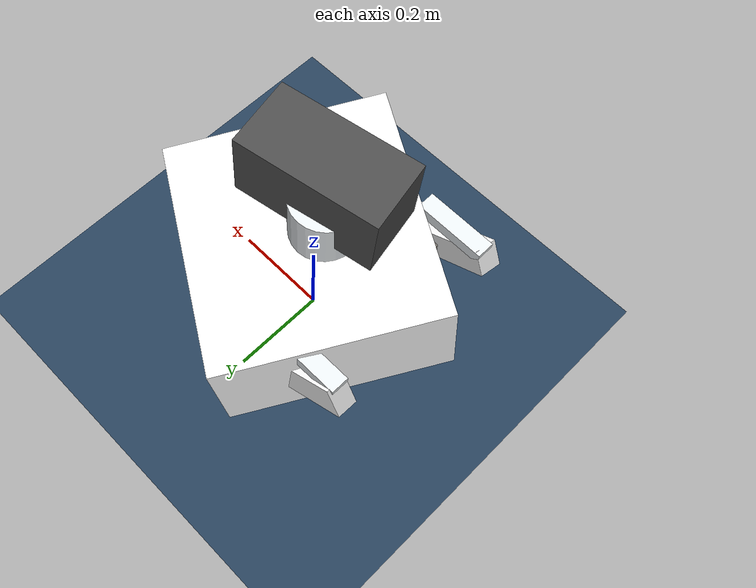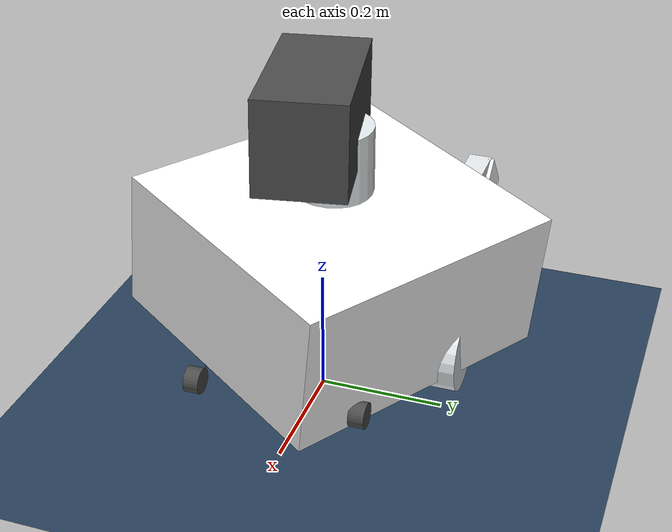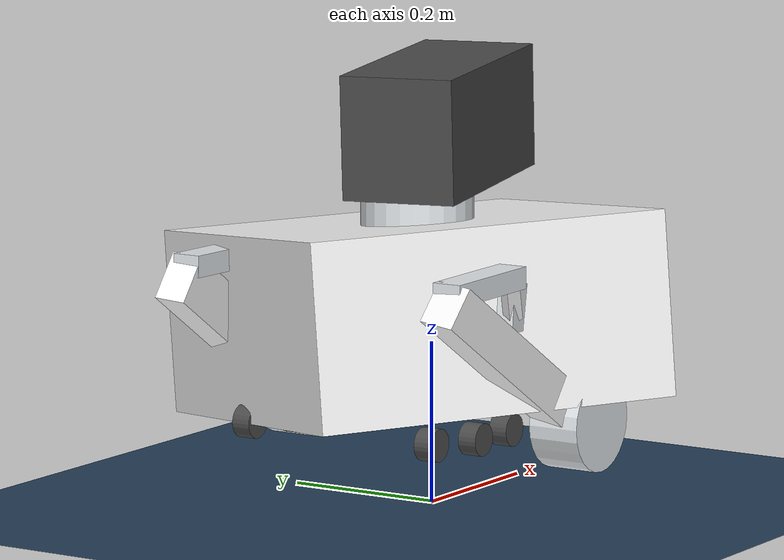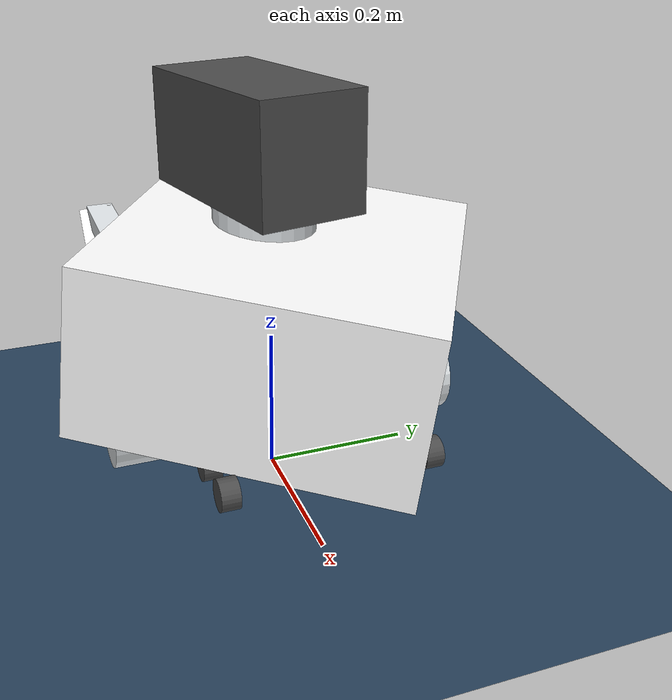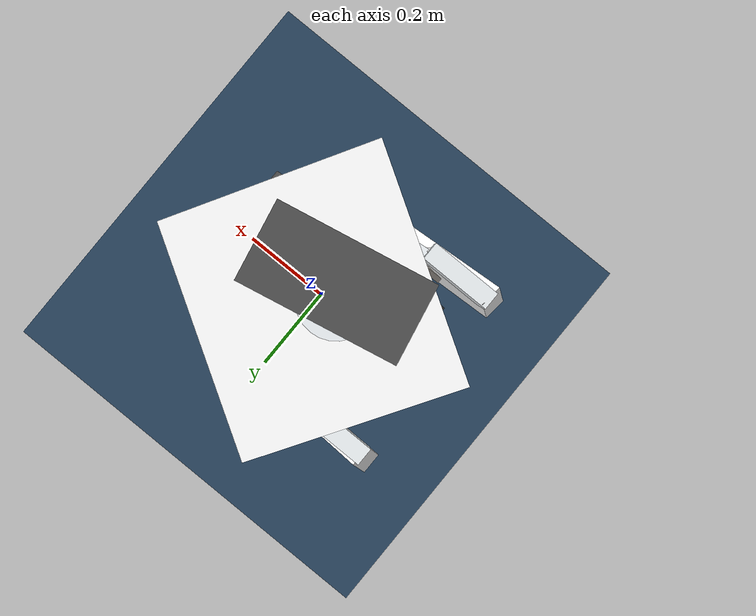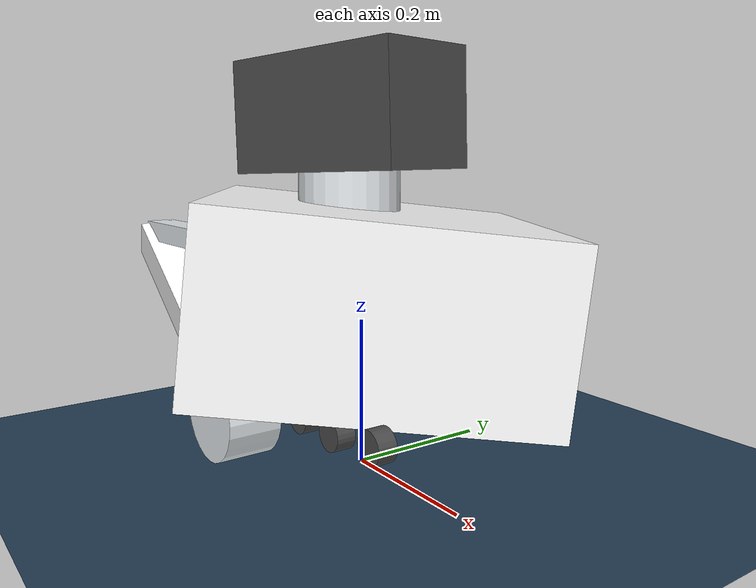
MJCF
<mujoco model="wheelbipe_924 scene">
  <include file="wheelbipe_924.xml"/>

  <statistic center="0 0 0.25" extent="0.8"/>

  <visual>
    <headlight diffuse="0.6 0.6 0.6" ambient="0.3 0.3 0.3" specular="0 0 0"/>
    <rgba haze="0.15 0.25 0.35 1"/>
    <global azimuth="-130" elevation="-20"/>
  </visual>

  <asset>
    <texture type="skybox" builtin="gradient" rgb1="0.3 0.5 0.7" rgb2="0 0 0" width="512" height="3072"/>
    <texture type="2d" name="groundplane" builtin="checker" mark="edge" rgb1="0.2 0.3 0.4" rgb2="0.1 0.2 0.3" markrgb="0.8 0.8 0.8" width="300" height="300"/>
    <material name="groundplane" texture="groundplane" texuniform="true" texrepeat="5 5" reflectance="0.2"/>
  </asset>

  <worldbody>
    <light pos="0 0 1.5" dir="0 0 -1" directional="true"/>
    <geom name="floor" size="0 0 0.05" type="plane" material="groundplane"/>
  </worldbody>

  <include file="locomotion_task.xml"/>
</mujoco>

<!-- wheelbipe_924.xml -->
<mujoco model="9.24">
  <compiler angle="radian" meshdir="assets" autolimits="true"/>

  <worldbody>
    <body name="base_link" pos="0 0 0.25"><freejoint name="base_free"/><inertial pos="0.011885 0.002730 -0.023045" mass="10.8309" fullinertia="0.140981 0.155510 0.236018 -0.002224 -0.002586 0.002225"/><site name="imu_site" pos="0 0 0" size="0.01"/><geom size="0.113576 0.218258 0.235364" pos="-0.004408 0.020032 -0.013968" quat="-0.151466 0.675286 -0.229011 -0.684544" type="box" rgba="1 1 1 1"/>
    <body name="left_rear1_link" pos="0.0170661 0.173507 0.0134711" quat="0.707107 0 0 -0.707107">
      <inertial pos="-0.000219747 -0.101308 0.00240689" quat="0.712398 0.701775 5.151e-05 -2.88261e-05" mass="0.263038" diaginertia="0.00146612 0.00139133 7.9271e-05"/>
      <joint name="left_rear1_joint" pos="0 0 0" axis="1 0 0"/>
      <geom size="0.0135845 0.0266745 0.0769625" pos="0.000442 -0.054663 0.002851" quat="0.0204904 -0.0315918 -0.687727 0.724992" type="box" rgba="0.764706 0.337255 1 1"/>
      <body name="left_rear2_link" pos="-0.0155 -0.215 0">
        <inertial pos="-0.00118174 0.0650307 -0.0476695" quat="0.887099 0.461574 -0.00111274 0.00167691" mass="0.371025" diaginertia="0.00256063 0.002482 9.54129e-05"/>
        <joint name="left_rear2_joint" pos="0 0 0" axis="1 0 0" range="-0.02 1.2"/>
        <geom size="0.021083 0.0308175 0.183054" pos="-0.007855 0.087214 -0.062916" quat="0.879252 0.475401 0.0244551 -0.0176734" type="box" rgba="1 1 1 1"/>
        <body name="left_wheel_link" pos="0 0.215 -0.142615">
          <inertial pos="-0.0251353 0.000141229 -7.40306e-05" quat="0.980469 -0.196673 -0.000174649 -0.000889777" mass="0.547374" diaginertia="0.00082635 0.000466549 0.000464442"/>
          <joint name="left_wheel_joint" pos="0 0 0" axis="1 0 0" range="-3.14 3.14"/>
          <geom size="0.059992 0.032925" pos="-0.015622 5e-06 6e-06" quat="0.707107 0 0.707107 0" type="cylinder" rgba="0.898039 0.917647 0.929412 1"/>
        </body>
      </body>
      <body name="left_spring1_link" pos="-0.00199722 -0.024 -0.0415692" quat="0.707107 0 0 0.707107">
        <inertial pos="-0.0296298 -0.0025 0.00295047" quat="0.474582 0.524187 0.524187 0.474582" mass="0.0312428" diaginertia="7.36128e-06 7.22225e-06 3.89104e-07"/>
        <joint name="left_spring1_joint" pos="0 0 0" axis="0 1 0" range="-0.5 0.1"/>
        <geom size="0.005489 0.0075 0.0457295" pos="-0.038082 -0.0025 0.003792" quat="0.474582 0.524187 0.524187 0.474582" type="box" rgba="0.647059 0.619608 0.588235 1"/>
        <body name="left_spring2_link" pos="-0.151 0 0.015036">
          <inertial pos="0.0593755 -0.0025 -0.00591247" quat="0.474582 0.524187 0.524187 0.474582" mass="0.131334" diaginertia="8.55355e-05 8.53964e-05 3.84543e-06"/>
          <joint name="left_spring2_joint" pos="0 0 0" axis="-0.995079 0 0.0990879" type="slide" range="-0.015 0.065"/>
          <geom size="0.007386 0.0075 0.0607295" pos="0.053008 -0.0025 -0.005278" quat="0.288662 -0.669245 0.318833 -0.605913" type="box" rgba="0.647059 0.619608 0.588235 1"/>
        </body>
      </body>
    </body>
    <body name="right_rear1_link" pos="0.017066 -0.16779 0.013471" quat="0.707105 0 0 -0.707108">
      <inertial pos="0.000225305 -0.101319 0.00241327" quat="0.712344 0.701831 -5.1696e-05 2.89771e-05" mass="0.263038" diaginertia="0.00146548 0.00139073 7.92288e-05"/>
      <joint name="right_rear1_joint" pos="0 0 0" axis="-1 0 0" range="-3.14 1"/>
      <geom size="0.0135535 0.028556 0.0771655" pos="-0.000464 -0.054865 0.004161" quat="0.667176 -0.743995 -0.0271531 0.0246963" type="box" rgba="0.898039 0.917647 0.929412 1"/>
      <body name="right_rear2_link" pos="0.0155 -0.215 0">
        <inertial pos="0.00119088 0.0650495 -0.0477452" quat="0.88714 0.461498 0.000849241 -0.00118793" mass="0.371427" diaginertia="0.00256139 0.00248251 9.56916e-05"/>
        <joint name="right_rear2_joint" pos="0 0 0" axis="-1 0 0" range="0 1.2"/>
        <geom size="0.0230925 0.0265545 0.182592" pos="0.006816 0.08876 -0.061304" quat="-0.0220688 0.072385 0.876321 0.475746" type="box" rgba="1 1 1 1"/>
        <body name="right_wheel_link" pos="0 0.215 -0.142615">
          <inertial pos="0.0251408 0.000155535 -3.51454e-05" quat="0.988079 -0.153942 0.0001433 0.000895361" mass="0.547374" diaginertia="0.00082635 0.000466549 0.000464442"/>
          <joint name="right_wheel_joint" pos="0 0 0" axis="1 0 0" range="-3.14 3.14"/>
          <geom size="0.05999 0.032925" pos="0.015628 3.1e-05 -7e-06" quat="0.707107 0 0.707107 0" type="cylinder" rgba="0.898039 0.917647 0.929412 1"/>
        </body>
      </body>
      <body name="right_spring1_link" pos="0.00200278 -0.024 -0.0415692" quat="0.707107 0 0 0.707107">
        <inertial pos="-0.0296298 0.0025 0.00295047" quat="0.474582 0.524187 0.524187 0.474582" mass="0.0312428" diaginertia="7.36128e-06 7.22225e-06 3.89104e-07"/>
        <joint name="right_spring1_joint" pos="0 0 0" axis="0 1 0" range="-0.5 0.1"/>
        <geom size="0.005489 0.0075 0.0457295" pos="-0.038082 0.0025 0.003792" quat="0.474582 0.524187 0.524187 0.474582" type="box" rgba="0.647059 0.619608 0.588235 1"/>
        <body name="right_spring2_link" pos="-0.151 0 0.0150362">
          <inertial pos="0.0593755 0.0025 -0.00591247" quat="0.474582 0.524187 0.524187 0.474582" mass="0.131334" diaginertia="8.55355e-05 8.53964e-05 3.84543e-06"/>
          <joint name="right_spring2_joint" pos="0 0 0" axis="-0.995079 0 0.0990876" type="slide" range="-0.015 0.065"/>
          <geom size="0.007386 0.0075 0.0607295" pos="0.053008 0.0025 -0.005278" quat="0.235744 -0.694079 0.260381 -0.628396" type="box" rgba="0.647059 0.619608 0.588235 1"/>
        </body>
      </body>
    </body>
    <body name="gimbal_yaw_link" pos="0.017066 0.0028539 0.072971">
      <inertial pos="-0.0528363 -0.00552415 0.0510267" quat="0.629686 0.434765 0.478353 0.430875" mass="0.479939" diaginertia="0.000845477 0.000643014 0.000465368"/>
      <joint name="gimbal_yaw_joint" pos="0 0 0" axis="0 0 -1"/>
      <geom size="0.069076 0.062022" pos="-0.047712 -0.001156 0.068402" quat="-1.73205e-07 1 0 0" type="cylinder" rgba="0.898039 0.917647 0.929412 1"/>
      <body name="gimbal_pitch_link" pos="0 0 0.11235">
        <inertial pos="0.0137603 -0.0151111 0.0466181" quat="0.599954 0.247533 0.667965 0.36415" mass="2.15462" diaginertia="0.0111064 0.0101526 0.00532011"/>
        <joint name="gimbal_pitch_joint" pos="0 0 0" axis="0.0184443 -0.99983 0"/>
        <geom size="0.0708425 0.0755015 0.141623" pos="-0.027878 -0.019667 0.040319" quat="0.537557 0.55729 -0.458954 -0.435684" type="box" rgba="0.298039 0.298039 0.298039 1"/>
      </body>
    </body>
    <body name="left_front1_link" pos="0.017063 0.18651 0.013471" quat="0.707105 0 0 -0.707108">
      <inertial pos="-0.000141444 0.0552416 0" quat="0.707104 0.707104 -0.00203113 -0.00203113" mass="0.0744739" diaginertia="8.16246e-05 7.33204e-05 9.3063e-06"/>
      <joint name="left_front1_joint" pos="0 0 0" axis="1 0 0" range="-3.14 3.14"/>
      <geom size="0.00575 0.0199125 0.061924" pos="-0.000747 0.043765 0.002703" quat="-1.18514e-07 1.26311e-07 -0.729256 0.684241" type="box" rgba="0.898039 0.917647 0.929412 1"/>
      <body name="left_front2_link" pos="0.0125 0.0950026 0">
        <inertial pos="-0.00209284 -0.0469575 -0.0330273" quat="0.473617 0.880715 -0.00454216 0.00266923" mass="0.0860831" diaginertia="0.000118222 0.00011756 5.86976e-06"/>
        <joint name="left_front2_joint" pos="0 0 0" axis="1 0 0" range="-1 0.1"/>
        <geom size="0.0104295 0.015927 0.068233" pos="-0.009845 -0.047534 -0.02804" quat="0.626723 -0.329627 -0.339598 -0.619062" type="box" rgba="0.647059 0.619608 0.588235 1"/>
        <body name="left_front3_link" pos="0 -0.095 -0.0630159">
          <inertial pos="-0.0124972 -0.0748582 0.0553152" quat="0.902548 0.430588 0 0" mass="0.115371" diaginertia="0.000173731 0.000168009 6.91158e-06"/>
          <joint name="left_front3_joint" pos="0 0 0" axis="1 0 0" range="-0.1 1"/>
          <geom size="0.0048635 0.010958 0.0914235" pos="-0.014326 -0.06876 0.041537" quat="-0.0256193 0.0724951 -0.867038 -0.492273" type="box" rgba="1 1 1 1"/>
          <body name="left_front4_link" pos="-0.013 -0.13802 0.11174">
            <inertial pos="0.0101187 -0.061345 0" quat="0.707102 0.707112 0 0" mass="0.0896953" diaginertia="0.000130577 0.000130562 6.43097e-06"/>
            <joint name="left_front4_joint" pos="0 0 0" axis="1 0 0" range="-2 0.1"/>
            <geom size="0.013358 0.01835 0.0733545" pos="-0.000347 -0.059993 0.000661" quat="-0.497176 0.502808 -0.502808 -0.497176" type="box" rgba="0.898039 0.917647 0.929412 1"/>
          </body>
        </body>
      </body>
    </body>
    <body name="right_front1_link" pos="0.017066 -0.18079 0.013471" quat="0.707105 0 0 -0.707108">
      <inertial pos="0.000147003 0.055239 0" quat="0.707104 0.707104 0.00203113 0.00203113" mass="0.0744739" diaginertia="8.16246e-05 7.33204e-05 9.3063e-06"/>
      <joint name="right_front1_joint" pos="0 0 0" axis="-1 0 0" range="-3.14 3.14"/>
      <geom size="0.00575 0.0199065 0.061906" pos="-0.000747 0.043773 -0.002908" quat="0.730897 0.682488 0 0" type="box" rgba="0.898039 0.917647 0.929412 1"/>
      <body name="right_front2_link" pos="-0.0125 0.095 0">
        <inertial pos="0.0020984 -0.0469575 -0.0330273" quat="0.473629 0.880709 0.00452458 -0.00265986" mass="0.0860831" diaginertia="0.000118222 0.000117558 5.8724e-06"/>
        <joint name="right_front2_joint" pos="0 0 0" axis="-1 0 0" range="-1 0.1"/>
        <geom size="0.0118935 0.015926 0.06602" pos="0.009801 -0.047934 -0.033717" quat="0.339643 0.619753 -0.626304 0.329077" type="box" rgba="0.647059 0.619608 0.588235 1"/>
        <body name="right_front3_link" pos="0 -0.095 -0.0630159">
          <inertial pos="0.0125028 -0.0748582 0.0553152" quat="0.902548 0.430588 0 0" mass="0.115371" diaginertia="0.000173731 0.000168009 6.91158e-06"/>
          <joint name="right_front3_joint" pos="0 0 0" axis="-1 0 0" range="-0.1 1"/>
          <geom size="0.0053955 0.010873 0.0340945" pos="0.014127 -0.130149 0.090355" quat="0.979644 0.159219 0.0651681 -0.10344" type="box" rgba="1 1 1 1"/>
          <body name="right_front4_link" pos="0.013 -0.13802 0.11174">
            <inertial pos="-0.0101131 -0.061345 0" quat="0.7071 0.707113 0 0" mass="0.0896953" diaginertia="0.000130577 0.00013056 6.43329e-06"/>
            <joint name="right_front4_joint" pos="0 0 0" axis="1 0 0" range="-2 0.1"/>
            <geom size="0.013358 0.01835 0.0733545" pos="0.000353 -0.060007 0.000661" quat="-0.497176 -0.502808 -0.502808 0.497176" type="box" rgba="0.898039 0.917647 0.929412 1"/>
          </body>
        </body>
      </body>
    </body>
    <body name="left_front_guide_link" pos="0.21607 0.13385 -0.12953">
      <inertial pos="0 0.00508744 0" quat="0.707107 0 0 0.707107" mass="0.0140787" diaginertia="2.76652e-06 1.58051e-06 1.58051e-06"/>
      <joint name="left_front_guide_joint" pos="0 0 0" axis="0 1 0"/>
      <geom size="0.019982 0.012" pos="3.1e-05 -0.001 5e-06" quat="0.707107 -0.707107 0 0" type="cylinder" rgba="0.298039 0.298039 0.298039 1"/>
    </body>
    <body name="left_front1_guide_link" pos="-0.20093 0.13385 -0.12953">
      <inertial pos="0 0.00508744 0" quat="0.707107 0 0 0.707107" mass="0.0140787" diaginertia="2.76652e-06 1.58051e-06 1.58051e-06"/>
      <joint name="left_front1_guide_joint" pos="0 0 0" axis="0 1 0"/>
      <geom size="0.02 0.012" pos="0 -0.001 0" quat="0.707107 -0.707107 0 0" type="cylinder" rgba="0.298039 0.298039 0.298039 1"/>
    </body>
    <body name="left_bottom1_guide_link" pos="0.13707 0.13385 -0.13953">
      <inertial pos="0 0.00508744 0" quat="0.707107 0 0 0.707107" mass="0.0140787" diaginertia="2.76652e-06 1.58051e-06 1.58051e-06"/>
      <joint name="left_bottom1_guide_joint" pos="0 0 0" axis="0 1 0"/>
      <geom size="0.019982 0.012" pos="-3.6e-05 -0.001 0" quat="0.707107 -0.707107 0 0" type="cylinder" rgba="0.298039 0.298039 0.298039 1"/>
    </body>
    <body name="left_bottom2_guide_link" pos="0.067066 0.13385 -0.13953">
      <inertial pos="0 0.00508744 0" quat="0.707107 0 0 0.707107" mass="0.0140787" diaginertia="2.76652e-06 1.58051e-06 1.58051e-06"/>
      <joint name="left_bottom2_guide_joint" pos="0 0 0" axis="0 1 0"/>
      <geom size="0.019982 0.012" pos="-3.2e-05 -0.001 4e-06" quat="0.707107 -0.707107 0 0" type="cylinder" rgba="0.298039 0.298039 0.298039 1"/>
    </body>
    <body name="left_bottom3_guide_link" pos="-0.032934 0.13385 -0.13953">
      <inertial pos="0 0.00508744 0" quat="0.707107 0 0 0.707107" mass="0.0140787" diaginertia="2.76652e-06 1.58051e-06 1.58051e-06"/>
      <joint name="left_bottom3_guide_joint" pos="0 0 0" axis="0 1 0"/>
      <geom size="0.019982 0.012" pos="3.6e-05 -0.001 0" quat="0.707107 -0.707107 0 0" type="cylinder" rgba="0.298039 0.298039 0.298039 1"/>
    </body>
    <body name="left_bottom4_guide_link" pos="-0.10293 0.13385 -0.13953">
      <inertial pos="0 0.00508744 0" quat="0.707107 0 0 0.707107" mass="0.0140787" diaginertia="2.76652e-06 1.58051e-06 1.58051e-06"/>
      <joint name="left_bottom4_guide_joint" pos="0 0 0" axis="0 1 0"/>
      <geom size="0.019982 0.012" pos="-3.6e-05 -0.001 0" quat="0.707107 -0.707107 0 0" type="cylinder" rgba="0.298039 0.298039 0.298039 1"/>
    </body>
    <body name="right_front_guide_link" pos="0.21607 -0.12815 -0.12953">
      <inertial pos="0 -0.0050874 0" quat="0.707107 0 0 0.707107" mass="0.014079" diaginertia="2.7665e-06 1.5805e-06 1.5805e-06"/>
      <joint name="right_front_guide_joint" pos="0 0 0" axis="0 -1 0"/>
      <geom size="0.019982 0.012" pos="3.1e-05 0.001 -5e-06" quat="0.707107 0.707107 0 0" type="cylinder" rgba="0.29804 0.29804 0.29804 1"/>
    </body>
    <body name="right_front1_guide_link" pos="-0.20093 -0.12815 -0.12953">
      <inertial pos="0 -0.0050874 0" quat="0.707107 0 0 0.707107" mass="0.014079" diaginertia="2.7665e-06 1.5805e-06 1.5805e-06"/>
      <joint name="right_front1_guide_joint" pos="0 0 0" axis="0 1 0"/>
      <geom size="0.02 0.012" pos="0 0.001 0" quat="0.707107 -0.707107 0 0" type="cylinder" rgba="0.29804 0.29804 0.29804 1"/>
    </body>
    <body name="right_bottom1_guide_link" pos="0.13707 -0.12815 -0.13953">
      <inertial pos="0 -0.0050874 0" quat="0.707107 0 0 0.707107" mass="0.014079" diaginertia="2.7665e-06 1.5805e-06 1.5805e-06"/>
      <joint name="right_bottom1_guide_joint" pos="0 0 0" axis="0 -1 0"/>
      <geom size="0.019982 0.012" pos="3.6e-05 0.001 0" quat="0.707107 0.707107 0 0" type="cylinder" rgba="0.29804 0.29804 0.29804 1"/>
    </body>
    <body name="right_bottom2_guide_link" pos="0.067066 -0.12815 -0.13953">
      <inertial pos="0 -0.0050874 0" quat="0.707107 0 0 0.707107" mass="0.014079" diaginertia="2.7665e-06 1.5805e-06 1.5805e-06"/>
      <joint name="right_bottom2_guide_joint" pos="0 0 0" axis="0 -1 0"/>
      <geom size="0.019982 0.012" pos="3.6e-05 0.001 0" quat="0.707107 0.707107 0 0" type="cylinder" rgba="0.29804 0.29804 0.29804 1"/>
    </body>
    <body name="right_bottom3_guide_link" pos="-0.032934 -0.12815 -0.13953">
      <inertial pos="0 -0.0050874 0" quat="0.707107 0 0 0.707107" mass="0.014079" diaginertia="2.7665e-06 1.5805e-06 1.5805e-06"/>
      <joint name="right_bottom3_guide_joint" pos="0 0 0" axis="0 -1 0"/>
      <geom size="0.019982 0.012" pos="3.6e-05 0.001 0" quat="0.707107 0.707107 0 0" type="cylinder" rgba="0.29804 0.29804 0.29804 1"/>
    </body>
    <body name="right_bottom4_guide_link" pos="-0.10293 -0.12815 -0.13953">
      <inertial pos="0 -0.0050874 0" quat="0.707107 0 0 0.707107" mass="0.014079" diaginertia="2.7665e-06 1.5805e-06 1.5805e-06"/>
      <joint name="right_bottom4_guide_joint" pos="0 0 0" axis="0 -1 0"/>
      <geom size="0.02 0.012" pos="0 0.001 0" quat="0.707107 0.707107 0 0" type="cylinder" rgba="0.29804 0.29804 0.29804 1"/>
    </body>
  </body></worldbody>
<actuator>
<!-- 主动腿关节：rear1 + front1（对应Isaac Sim的legs_act）
     stiffness=60, damping=2.0, effort_limit=40, velocity_limit=17 -->
<position name="left_rear1_joint_motor" joint="left_rear1_joint"
          kp="60" kv="2.0" ctrlrange="-3.14 3.14" forcerange="-40 40"/>
<position name="right_rear1_joint_motor" joint="right_rear1_joint"
          kp="60" kv="2.0" ctrlrange="-3.14 3.14" forcerange="-40 40"/>
<position name="left_front1_joint_motor" joint="left_front1_joint"
          kp="60" kv="2.0" ctrlrange="-3.14 3.14" forcerange="-40 40"/>
<position name="right_front1_joint_motor" joint="right_front1_joint"
          kp="60" kv="2.0" ctrlrange="-3.14 3.14" forcerange="-40 40"/>

<!-- 轮子：速度控制
     stiffness=0.0, damping=0.2, effort_limit=5.0, velocity_limit=60 -->
<velocity name="left_wheel_joint_motor" joint="left_wheel_joint"
          kv="0.2" ctrlrange="-60 60" forcerange="-5 5"/>
<velocity name="right_wheel_joint_motor" joint="right_wheel_joint"
          kv="0.2" ctrlrange="-60 60" forcerange="-5 5"/>
</actuator><option timestep="0.002" gravity="0 0 -9.81"/></mujoco>

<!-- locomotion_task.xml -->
<mujoco model="wheelbipe_924 locomotion task">
  <sensor>
    <!-- 车轮接触传感器 -->
    <framepos name="left_wheel_pos" objtype="body" objname="left_wheel_link"/>
    <framepos name="right_wheel_pos" objtype="body" objname="right_wheel_link"/>

    <!-- 基座IMU -->
    <gyro name="base_gyro" site="imu_site"/>
    <accelerometer name="base_accel" site="imu_site"/>
    <framequat name="base_quat" objtype="site" objname="imu_site"/>

    <!-- 关节位置和速度 -->
    <jointpos name="left_rear1_pos" joint="left_rear1_joint"/>
    <jointpos name="left_rear2_pos" joint="left_rear2_joint"/>
    <jointpos name="left_wheel_pos_joint" joint="left_wheel_joint"/>
    <jointpos name="right_rear1_pos" joint="right_rear1_joint"/>
    <jointpos name="right_rear2_pos" joint="right_rear2_joint"/>
    <jointpos name="right_wheel_pos_joint" joint="right_wheel_joint"/>

    <jointvel name="left_rear1_vel" joint="left_rear1_joint"/>
    <jointvel name="left_rear2_vel" joint="left_rear2_joint"/>
    <jointvel name="left_wheel_vel" joint="left_wheel_joint"/>
    <jointvel name="right_rear1_vel" joint="right_rear1_joint"/>
    <jointvel name="right_rear2_vel" joint="right_rear2_joint"/>
    <jointvel name="right_wheel_vel" joint="right_wheel_joint"/>
  </sensor>

  <keyframe>
    <key name="home" qpos="
      0 0 0.25
      1 0 0 0
      0 0.3 0 0 0
      0 0.3 0 0 0
      0 0
      0 0 0 0
      0 0 0 0
      0 0 0 0 0 0
      0 0 0 0 0 0"
      ctrl="0 0 0 0 0 0"/>
  </keyframe>
</mujoco>
